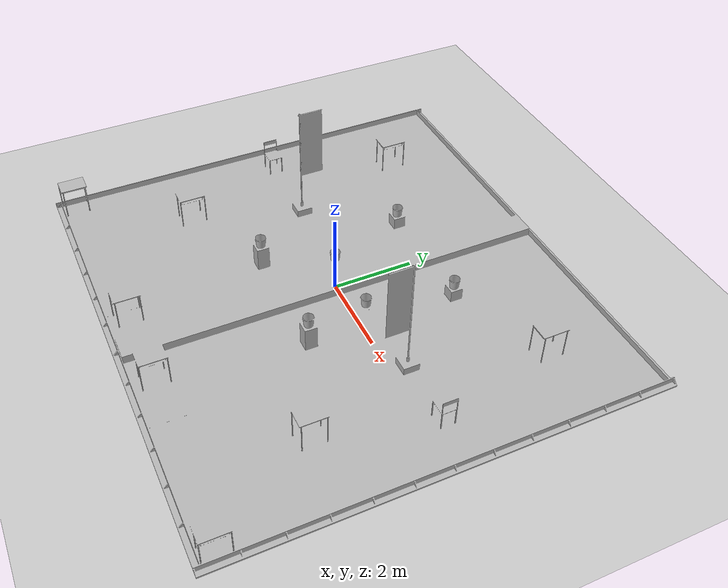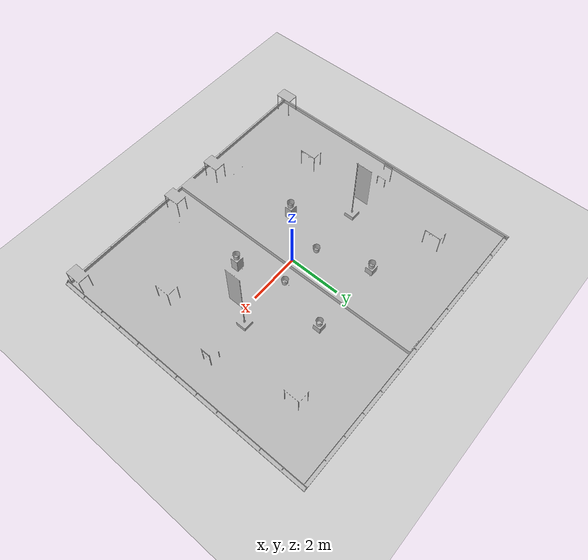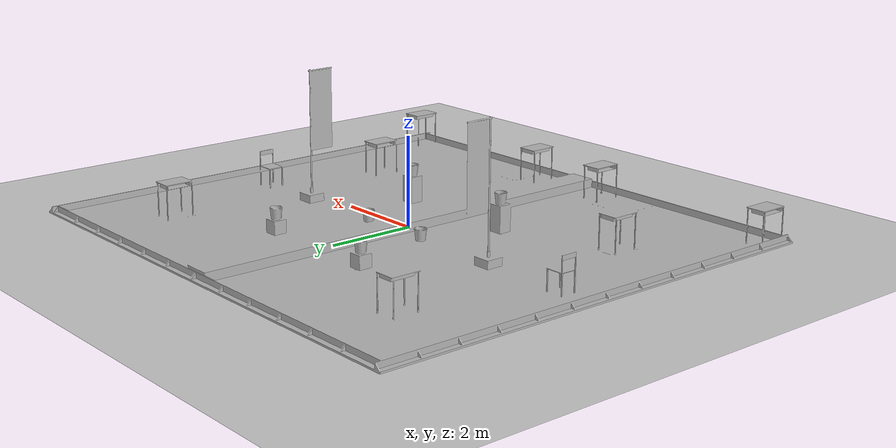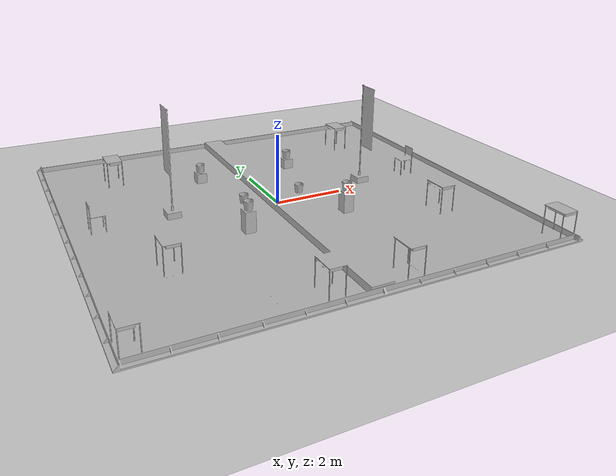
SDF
<?xml version="1.0"?>
<sdf version="1.6">
  <world name="default">
  <plugin
    filename="gz-sim-physics-system"
    name="gz::sim::systems::Physics">
  </plugin>
  <plugin
    filename="gz-sim-user-commands-system"
    name="gz::sim::systems::UserCommands">
  </plugin>
  <plugin
    filename="gz-sim-scene-broadcaster-system"
    name="gz::sim::systems::SceneBroadcaster">
  </plugin>
  <plugin
    filename="gz-sim-sensors-system"
    name="gz::sim::systems::Sensors">
    <render_engine>ogre2</render_engine>
  </plugin>
  <plugin
    filename="gz-sim-imu-system"
    name="gz::sim::systems::Imu">
  </plugin>
    <include>
      <uri>https://fuel.gazebosim.org/1.0/OpenRobotics/models/Ground Plane</uri>
    </include>

    <include>
      <uri>https://fuel.gazebosim.org/1.0/OpenRobotics/models/Sun</uri>
    </include>

    <scene>
      <shadows>false</shadows>
    </scene>

    <gui fullscreen='0'>
      <camera name='user_camera'>
        <pose frame=''>0.319654 -0.235002 9.29441 0 1.5138 0.009599</pose>
        <view_controller>orbit</view_controller>
        <projection_type>perspective</projection_type>
      </camera>
    </gui>

    <physics type="ode">
      <real_time_update_rate>1000.0</real_time_update_rate>
      <max_step_size>0.001</max_step_size>
      <real_time_factor>1</real_time_factor>
      <ode>
        <solver>
          <type>quick</type>
          <iters>150</iters>
          <precon_iters>0</precon_iters>
          <sor>1.400000</sor>
          <use_dynamic_moi_rescaling>1</use_dynamic_moi_rescaling>
        </solver>
        <constraints>
          <cfm>0.00001</cfm>
          <erp>0.2</erp>
          <contact_max_correcting_vel>2000.000000</contact_max_correcting_vel>
          <contact_surface_layer>0.01000</contact_surface_layer>
        </constraints>
      </ode>
    </physics>
    <include>
      <uri>model://field_26a</uri>
      <name>field</name>
    </include>
  </world>
</sdf>

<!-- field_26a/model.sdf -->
<sdf version="1.6">
  <model name="measurement">
    <static>true</static>
    <link name="link">
      <collision name="collision">
        <geometry>
          <mesh>
            <scale>1 1 1</scale>
            <uri>model://field_26a/meshes/real_field.stl</uri>
          </mesh>
        </geometry>
        <surface>
          <friction>
            <ode>
              <mu>1.2</mu>
              <mu2>1.2</mu2>
            </ode>
          </friction>
        </surface>
      </collision>
      <visual name="visual">
        <geometry>
          <mesh>
            <scale>1 1 1</scale>
            <uri>model://field_26a/meshes/real_field.dae</uri>
          </mesh>
        </geometry>
      </visual>
    </link>
  </model>
</sdf>
